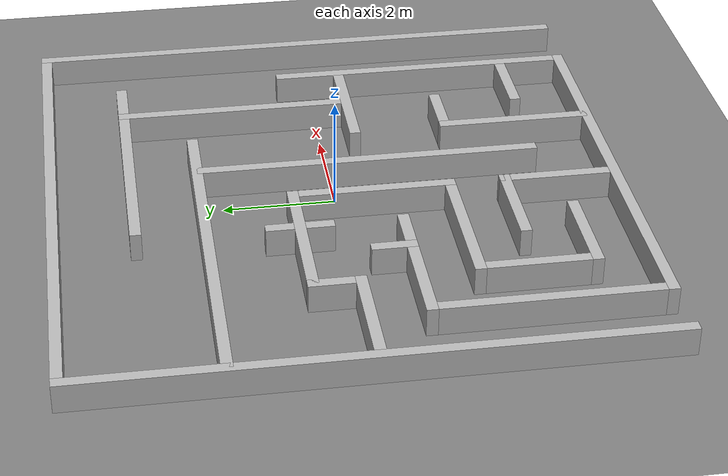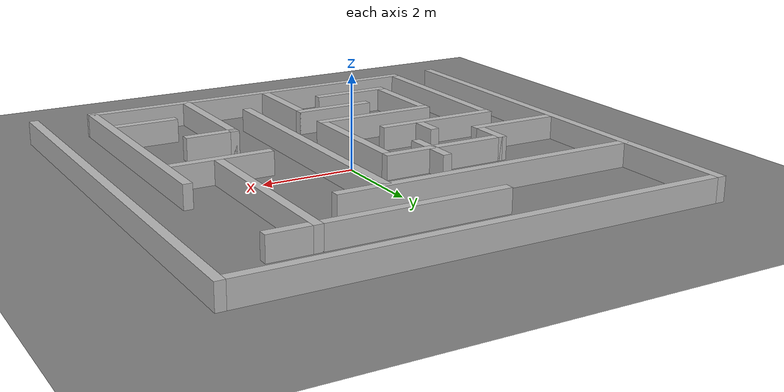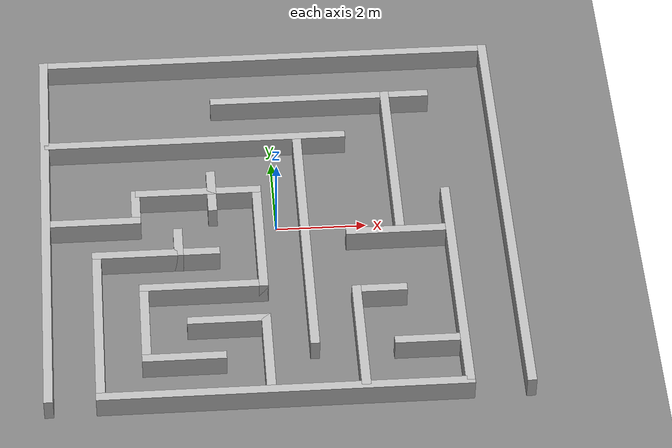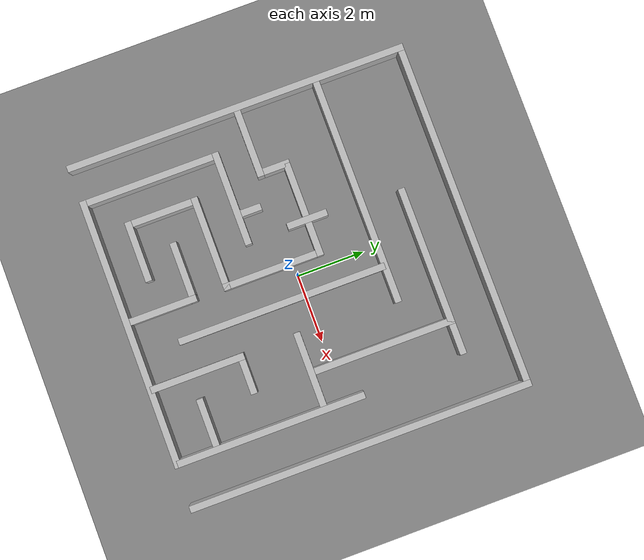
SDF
<?xml version="1.0"?>
<sdf version="1.8">
  <world name="tay_maze">

    <!-- ================== Gazebo Core Systems ================== -->
    <plugin filename="gz-sim-physics-system" name="gz::sim::systems::Physics"/>
    <plugin filename="gz-sim-user-commands-system" name="gz::sim::systems::UserCommands"/>
    <plugin filename="gz-sim-scene-broadcaster-system" name="gz::sim::systems::SceneBroadcaster"/>
    <plugin filename="gz-sim-sensors-system" name="gz::sim::systems::Sensors">
      <render_engine>ogre2</render_engine>
    </plugin>
    <plugin filename="gz-sim-imu-system" name="gz::sim::systems::Imu"/>

    <!-- ================== Ground Plane ================== -->
    <model name="ground">
      <static>true</static>
      <link name="ground_link">
        <collision name="ground_collision">
          <geometry>
            <plane>
              <normal>0 0 1</normal>
              <size>20 20</size>
            </plane>
          </geometry>
        </collision>
        <visual name="ground_visual">
          <geometry>
            <plane>
              <normal>0 0 1</normal>
              <size>20 20</size>
            </plane>
          </geometry>
          <material>
            <ambient>0.5 0.5 0.5 1</ambient>
            <diffuse>0.5 0.5 0.5 1</diffuse>
          </material>
        </visual>
      </link>
    </model>

    <!-- ================== Sun Light ================== -->
    <light name="sun" type="directional">
      <cast_shadows>true</cast_shadows>
      <pose>0 0 10 0 -0 0</pose>
      <diffuse>0.8 0.8 0.8 1</diffuse>
      <specular>0.1 0.1 0.1 1</specular>
      <direction>-0.5 0.5 -1</direction>
    </light>

    <!-- Outer walls (maze boundary). Size chosen for 10x10 maze.  -->

    <!-- ================== North Wall ================== -->
    <model name="outer_north">
      <pose>0 5 0 0 0 0</pose>
      <static>true</static>
      <link name="link">
        <collision name="collision">
          <geometry><box><size>10 0.2 1</size></box></geometry>
        </collision>
        <visual name="visual">
          <geometry><box><size>10 0.2 1</size></box></geometry>
        </visual>
      </link>
    </model>

    <!-- ================== South Wall ================== -->
    <model name="outer_south">
      <pose>-0.1 -5 0 0 0 0</pose>
      <static>true</static>
      <link name="link">
        <collision name="collision">
          <geometry><box><size>8 0.2 1</size></box></geometry>
        </collision>
        <visual name="visual">
          <geometry><box><size>8 0.2 1</size></box></geometry>
        </visual>
      </link>
    </model>

    <!-- ================== East Wall ================== -->
    <model name="outer_east">
      <pose>5.1 0 0 0 0 1.5708</pose> <!-- rotate 90° -->
      <static>true</static>
      <link name="link">
        <collision name="collision">
          <geometry><box><size>10.2 0.2 1</size></box></geometry>
        </collision>
        <visual name="visual">
          <geometry><box><size>10.2 0.2 1</size></box></geometry>
        </visual>
      </link>
    </model>

    <!-- ================== West Wall ================== -->
    <model name="outer_west">
      <pose>-5.1 0 0 0 0 1.5708</pose> <!-- rotate 90° -->
      <static>true</static>
      <link name="link">
        <collision name="collision">
          <geometry><box><size>10.2 0.2 1</size></box></geometry>
        </collision>
        <visual name="visual">
          <geometry><box><size>10.2 0.2 1</size></box></geometry>
        </visual>
      </link>
    </model>

    <!-- Inner maze walls (all connected to boundary).             -->

    <!-- ================== Inner Wall 1 ================== -->
    <model name="inner_wall1">
      <pose>-4 -3 0 0 0 1.5708</pose> <!-- rotate 90° -->
      <static>true</static>
      <link name="link">
        <collision name="collision">
          <geometry><box><size>3.8 0.2 1</size></box></geometry>
        </collision>
        <visual name="visual">
          <geometry><box><size>3.8 0.2 1</size></box></geometry>
        </visual>
      </link>
    </model>

    <!-- ================== Inner Wall 2 ================== -->
    <model name="inner_wall2">
      <pose>-2.7 -1 0 0 0 0</pose>
      <static>true</static>
      <link name="link">
        <collision name="collision">
          <geometry><box><size>2.8 0.2 1</size></box></geometry>
        </collision>
        <visual name="visual">
          <geometry><box><size>2.8 0.2 1</size></box></geometry>
        </visual>
      </link>
    </model>

    <!-- ================== Inner Wall 3 ================== -->
    <model name="inner_wall3">
      <pose>-3 -3 0 0 0 1.5708</pose> <!-- rotate 90° -->
      <static>true</static>
      <link name="link">
        <collision name="collision">
          <geometry><box><size>1.8 0.2 1</size></box></geometry>
        </collision>
        <visual name="visual">
          <geometry><box><size>1.8 0.2 1</size></box></geometry>
        </visual>
      </link>
    </model>

    <!-- ================== Inner Wall 4 ================== -->
    <model name="inner_wall4">
      <pose>-1.7 -2 0 0 0 0</pose>
      <static>true</static>
      <link name="link">
        <collision name="collision">
          <geometry><box><size>2.8 0.2 1</size></box></geometry>
        </collision>
        <visual name="visual">
          <geometry><box><size>2.8 0.2 1</size></box></geometry>
        </visual>
      </link>
    </model>

    <!-- ================== Inner Wall 5 ================== -->
    <model name="inner_wall5">
      <pose>-2.2 -4 0 0 0 0</pose>
      <static>true</static>
      <link name="link">
        <collision name="collision">
          <geometry><box><size>1.8 0.2 1</size></box></geometry>
        </collision>
        <visual name="visual">
          <geometry><box><size>1.8 0.2 1</size></box></geometry>
        </visual>
      </link>
    </model>

    <!-- ================== Inner Wall 6 ================== -->
    <model name="inner_wall6">
      <pose>-0.4 -0.7 0 0 0 1.5708</pose> <!-- rotate 90° -->
      <static>true</static>
      <link name="link">
        <collision name="collision">
          <geometry><box><size>2.8 0.2 1</size></box></geometry>
        </collision>
        <visual name="visual">
          <geometry><box><size>2.8 0.2 1</size></box></geometry>
        </visual>
      </link>
    </model>

    <!-- ================== Inner Wall 7 ================== -->
    <model name="inner_wall7">
      <pose>-0.4 -3.9 0 0 0 1.5708</pose> <!-- rotate 90° -->
      <static>true</static>
      <link name="link">
        <collision name="collision">
          <geometry><box><size>2 0.2 1</size></box></geometry>
        </collision>
        <visual name="visual">
          <geometry><box><size>2 0.2 1</size></box></geometry>
        </visual>
      </link>
    </model>

    <!-- ================== Inner Wall 8 ================== -->
    <model name="inner_wall8">
      <pose>-1.2 -3 0 0 0 0</pose>
      <static>true</static>
      <link name="link">
        <collision name="collision">
          <geometry><box><size>1.8 0.2 1</size></box></geometry>
        </collision>
        <visual name="visual">
          <geometry><box><size>1.8 0.2 1</size></box></geometry>
        </visual>
      </link>
    </model>

    <!-- ================== Inner Wall 9 ================== -->
    <model name="inner_wall9">
      <pose>0.6 -0.7 0 0 0 1.5708</pose> <!-- rotate 90° -->
      <static>true</static>
      <link name="link">
        <collision name="collision">
          <geometry><box><size>6.2 0.2 1</size></box></geometry>
        </collision>
        <visual name="visual">
          <geometry><box><size>6.2 0.2 1</size></box></geometry>
        </visual>
      </link>
    </model>

    <!-- ================== Inner Wall 10 ================== -->
    <model name="inner_wall10">
      <pose>1.6 -3.6 0 0 0 1.5708</pose> <!-- rotate 90° -->
      <static>true</static>
      <link name="link">
        <collision name="collision">
          <geometry><box><size>2.8 0.2 1</size></box></geometry>
        </collision>
        <visual name="visual">
          <geometry><box><size>2.8 0.2 1</size></box></geometry>
        </visual>
      </link>
    </model>

    <!-- ================== Inner Wall 11 ================== -->
    <model name="inner_wall11">
      <pose>-1.7 2.4 0 0 0 0</pose>
      <static>true</static>
      <link name="link">
        <collision name="collision">
          <geometry><box><size>6.8 0.2 1</size></box></geometry>
        </collision>
        <visual name="visual">
          <geometry><box><size>6.8 0.2 1</size></box></geometry>
        </visual>
      </link>
    </model>

    <!-- ================== Inner Wall 12 ================== -->
    <model name="inner_wall12">
      <pose>-1.7 0.8 0 0 0 0</pose>
      <static>true</static>
      <link name="link">
        <collision name="collision">
          <geometry><box><size>2.8 0.2 1</size></box></geometry>
        </collision>
        <visual name="visual">
          <geometry><box><size>2.8 0.2 1</size></box></geometry>
        </visual>
      </link>
    </model>

    <!-- ================== Inner Wall 13 ================== -->
    <model name="inner_wall13">
      <pose>-1.4 0.8 0 0 0 1.5708</pose> <!-- rotate 90° -->
      <static>true</static>
      <link name="link">
        <collision name="collision">
          <geometry><box><size>1.2 0.2 1</size></box></geometry>
        </collision>
        <visual name="visual">
          <geometry><box><size>1.2 0.2 1</size></box></geometry>
        </visual>
      </link>
    </model>

    <!-- ================== Inner Wall 14 ================== -->
    <model name="inner_wall14">
      <pose>-2.2 -0.7 0 0 0 1.5708</pose> <!-- rotate 90° -->
      <static>true</static>
      <link name="link">
        <collision name="collision">
          <geometry><box><size>0.8 0.2 1</size></box></geometry>
        </collision>
        <visual name="visual">
          <geometry><box><size>0.8 0.2 1</size></box></geometry>
        </visual>
      </link>
    </model>

    <!-- ================== Inner Wall 15 ================== -->
    <model name="inner_wall15">
      <pose>-3.1 0.5 0 0 0 1.5708</pose> <!-- rotate 90° -->
      <static>true</static>
      <link name="link">
        <collision name="collision">
          <geometry><box><size>0.8 0.2 1</size></box></geometry>
        </collision>
        <visual name="visual">
          <geometry><box><size>0.8 0.2 1</size></box></geometry>
        </visual>
      </link>
    </model>

    <!-- ================== Inner Wall 16 ================== -->
    <model name="inner_wall16">
      <pose>-4 -0 0 0 0 0</pose>
      <static>true</static>
      <link name="link">
        <collision name="collision">
          <geometry><box><size>2.0 0.2 1</size></box></geometry>
        </collision>
        <visual name="visual">
          <geometry><box><size>2.0 0.2 1</size></box></geometry>
        </visual>
      </link>
    </model>

    <!-- ================== Inner Wall 17 ================== -->
    <model name="inner_wall17">
      <pose>2.1 -2.3 0 0 0 0</pose>
      <static>true</static>
      <link name="link">
        <collision name="collision">
          <geometry><box><size>1.2 0.2 1</size></box></geometry>
        </collision>
        <visual name="visual">
          <geometry><box><size>1.2 0.2 1</size></box></geometry>
        </visual>
      </link>
    </model>

    <!-- ================== Inner Wall 18 ================== -->
    <model name="inner_wall18">
      <pose>3.8 -2.2 0 0 0 1.5708</pose> <!-- rotate 90° -->
      <static>true</static>
      <link name="link">
        <collision name="collision">
          <geometry><box><size>5.6 0.2 1</size></box></geometry>
        </collision>
        <visual name="visual">
          <geometry><box><size>5.6 0.2 1</size></box></geometry>
        </visual>
      </link>
    </model>

    <!-- ================== Inner Wall 19 ================== -->
    <model name="inner_wall19">
      <pose>3.0 -3.8 0 0 0 0</pose>
      <static>true</static>
      <link name="link">
        <collision name="collision">
          <geometry><box><size>1.4 0.2 1</size></box></geometry>
        </collision>
        <visual name="visual">
          <geometry><box><size>1.4 0.2 1</size></box></geometry>
        </visual>
      </link>
    </model>

    <!-- ================== Inner Wall 20 ================== -->
    <model name="inner_wall20">
      <pose>2.6 -0.6 0 0 0 0</pose>
      <static>true</static>
      <link name="link">
        <collision name="collision">
          <geometry><box><size>2.2 0.2 1</size></box></geometry>
        </collision>
        <visual name="visual">
          <geometry><box><size>2.2 0.2 1</size></box></geometry>
        </visual>
      </link>
    </model>

    <!-- ================== Inner Wall 21 ================== -->
    <model name="inner_wall21">
      <pose>2.7 1.6 0 0 0 1.5708</pose> <!-- rotate 90° -->
      <static>true</static>
      <link name="link">
        <collision name="collision">
          <geometry><box><size>4.2 0.2 1</size></box></geometry>
        </collision>
        <visual name="visual">
          <geometry><box><size>4.2 0.2 1</size></box></geometry>
        </visual>
      </link>
    </model>

    <!-- ================== Inner Wall 22 ================== -->
    <model name="inner_wall22">
      <pose>1.2 3.6 0 0 0 0</pose>
      <static>true</static>
      <link name="link">
        <collision name="collision">
          <geometry><box><size>5.0 0.2 1</size></box></geometry>
        </collision>
        <visual name="visual">
          <geometry><box><size>5.0 0.2 1</size></box></geometry>
        </visual>
      </link>
    </model>

  </world>
</sdf>
